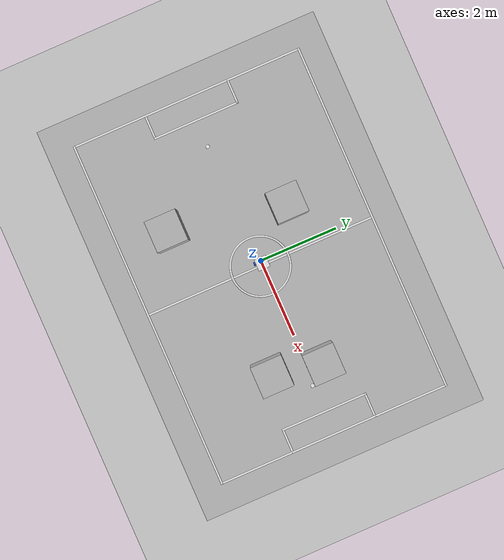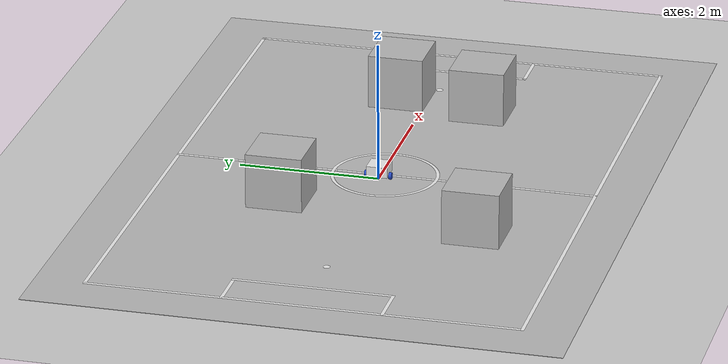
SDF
<sdf version="1.7">
 <world name="default">
  <light name="sun" type="directional">
   <pose>0 0 10 0 -0 0</pose>
   <diffuse>0.8 0.8 0.8 1</diffuse>
   <specular>0.2 0.2 0.2 1</specular>
   <attenuation>
    <range>1000</range>
    <constant>0.9</constant>
    <linear>0.01</linear>
    <quadratic>0.001</quadratic>
   </attenuation>
   <direction>-0.5 0.1 -0.9</direction>
   <spot><inner_angle>0</inner_angle><outer_angle>0</outer_angle><falloff>0</falloff></spot>
  </light>
  <model name="ground_plane">
   <static>1</static>
   <link name="link">
    <collision name="collision">
     <geometry><plane><normal>0 0 1</normal><size>100 100</size></plane></geometry>
     <surface>
      <contact><collide_bitmask>65535</collide_bitmask></contact>
      <friction><ode><mu>100</mu><mu2>50</mu2></ode></friction>
     </surface>
    </collision>
    <visual name="visual">
     <cast_shadows>0</cast_shadows>
     <geometry><plane><normal>0 0 1</normal><size>100 100</size></plane></geometry>
     <material>
      <script><uri>file://media/materials/scripts/gazebo.material</uri><name>Gazebo/Grey</name></script>
     </material>
    </visual>
   </link>
  </model>
  <gravity>0 0 -9.8</gravity>
  <magnetic_field>6e-06 2.3e-05 -4.2e-05</magnetic_field>
  <atmosphere type="adiabatic"/>
  <physics type="ode">
   <max_step_size>0.001</max_step_size>
   <real_time_factor>1</real_time_factor>
   <real_time_update_rate>1000</real_time_update_rate>
  </physics>
  <scene><ambient>0.4 0.4 0.4 1</ambient><background>0.7 0.7 0.7 1</background><shadows>1</shadows></scene>
  <audio><device>default</device></audio>
  <spherical_coordinates>
   <surface_model>EARTH_WGS84</surface_model>
   <latitude_deg>0</latitude_deg>
   <longitude_deg>0</longitude_deg>
   <elevation>0</elevation>
   <heading_deg>0</heading_deg>
  </spherical_coordinates>
  <model name="my_bot">
   <link name="base_link">
    <inertial>
     <pose>0.065 0 0.0625 0 -0 0</pose>
     <mass>0.6</mass>
     <inertia>
      <ixx>0.00525625</ixx>
      <ixy>0</ixy>
      <ixz>0.0005625</ixz>
      <iyy>0.00593125</iyy>
      <iyz>0</iyz>
      <izz>0.008275</izz>
     </inertia>
    </inertial>
    <collision name="base_link_fixed_joint_lump__chassis_collision">
     <pose>0.05 0 0.075 0 -0 0</pose>
     <geometry><box><size>0.3 0.3 0.15</size></box></geometry>
    </collision>
    <collision name="base_link_fixed_joint_lump__caster_wheel_collision_1">
     <pose>0.14 0 0 0 -0 0</pose>
     <geometry><sphere><radius>0.05</radius></sphere></geometry>
     <surface><friction><ode><mu>0.001</mu><mu2>0.001</mu2></ode></friction></surface>
    </collision>
    <visual name="base_link_fixed_joint_lump__chassis_visual">
     <pose>0.05 0 0.075 0 -0 0</pose>
     <geometry><box><size>0.3 0.3 0.15</size></box></geometry>
     <material>
      <script><name>Gazebo/White</name><uri>file://media/materials/scripts/gazebo.material</uri></script>
     </material>
    </visual>
    <visual name="base_link_fixed_joint_lump__caster_wheel_visual_1">
     <pose>0.14 0 0 0 -0 0</pose>
     <geometry><sphere><radius>0.05</radius></sphere></geometry>
     <material>
      <script><name>Gazebo/Black</name><uri>file://media/materials/scripts/gazebo.material</uri></script>
     </material>
    </visual>
   </link>
   <joint name="left_wheel_joint" type="revolute">
    <pose relative_to="base_link">0 0.175 0 -1.5708 0 0</pose>
    <parent>base_link</parent>
    <child>left_wheel</child>
    <axis>
     <xyz>0 0 1</xyz>
     <limit><lower>-1e+16</lower><upper>1e+16</upper></limit>
     <dynamics><spring_reference>0</spring_reference><spring_stiffness>0</spring_stiffness></dynamics>
    </axis>
   </joint>
   <link name="left_wheel">
    <pose relative_to="left_wheel_joint">0 0 0 0 -0 0</pose>
    <inertial>
     <mass>0.1</mass>
     <inertia>
      <ixx>7.58333e-05</ixx>
      <ixy>0</ixy>
      <ixz>0</ixz>
      <iyy>7.58333e-05</iyy>
      <iyz>0</iyz>
      <izz>0.000125</izz>
     </inertia>
    </inertial>
    <collision name="left_wheel_collision">
     <geometry><cylinder><length>0.04</length><radius>0.05</radius></cylinder></geometry>
    </collision>
    <visual name="left_wheel_visual">
     <geometry><cylinder><length>0.04</length><radius>0.05</radius></cylinder></geometry>
     <material>
      <script><name>Gazebo/Blue</name><uri>file://media/materials/scripts/gazebo.material</uri></script>
     </material>
    </visual>
   </link>
   <joint name="right_wheel_joint" type="revolute">
    <pose relative_to="base_link">0 -0.175 0 1.5708 -0 0</pose>
    <parent>base_link</parent>
    <child>right_wheel</child>
    <axis>
     <xyz>0 0 -1</xyz>
     <limit><lower>-1e+16</lower><upper>1e+16</upper></limit>
     <dynamics><spring_reference>0</spring_reference><spring_stiffness>0</spring_stiffness></dynamics>
    </axis>
   </joint>
   <link name="right_wheel">
    <pose relative_to="right_wheel_joint">0 0 0 0 -0 0</pose>
    <inertial>
     <mass>0.1</mass>
     <inertia>
      <ixx>7.58333e-05</ixx>
      <ixy>0</ixy>
      <ixz>0</ixz>
      <iyy>7.58333e-05</iyy>
      <iyz>0</iyz>
      <izz>0.000125</izz>
     </inertia>
    </inertial>
    <collision name="right_wheel_collision">
     <geometry><cylinder><length>0.04</length><radius>0.05</radius></cylinder></geometry>
    </collision>
    <visual name="right_wheel_visual">
     <geometry><cylinder><length>0.04</length><radius>0.05</radius></cylinder></geometry>
     <material>
      <script><name>Gazebo/Blue</name><uri>file://media/materials/scripts/gazebo.material</uri></script>
     </material>
    </visual>
   </link>
   <static>0</static>
   <plugin name="diff_drive" filename="libgazebo_ros_diff_drive.so">
    <left_joint>left_wheel_joint</left_joint>
    <right_joint>right_wheel_joint</right_joint>
    <wheel_separation>0.35</wheel_separation>
    <wheel_diameter>0.1</wheel_diameter>
    <max_wheel_torque>200</max_wheel_torque>
    <max_wheel_acceleration>10.0</max_wheel_acceleration>
    <odometry_frame>odom</odometry_frame>
    <robot_base_frame>base_link</robot_base_frame>
    <publish_odom>1</publish_odom>
    <publish_odom_tf>1</publish_odom_tf>
    <publish_wheel_tf>1</publish_wheel_tf>
   </plugin>
   <pose>0.008671 2.5e-05 0.06 0 1e-06 7.3e-05</pose>
  </model>
  <model name="RoboCup 14 SPL Field">
   <static>1</static>
   <link name="field">
    <pose>0 0 0.01 0 -0 0</pose>
    <collision name="collision">
     <geometry><plane><normal>0 0 1</normal><size>10.4 7.4</size></plane></geometry>
     <surface><friction><ode><mu>100</mu><mu2>50</mu2></ode></friction></surface>
    </collision>
    <visual name="carpet">
     <cast_shadows>0</cast_shadows>
     <geometry><plane><normal>0 0 1</normal><size>10.4 7.4</size></plane></geometry>
     <material>
      <script>
       <uri>model://robocup09_spl_field/materials/scripts/</uri>
       <uri>model://robocup09_spl_field/materials/textures/</uri>
       <name>RoboCup/Carpet</name>
      </script>
     </material>
    </visual>
    <visual name="sideline_1">
     <pose>0 3 0.011 0 -0 0</pose>
     <cast_shadows>0</cast_shadows>
     <geometry><plane><normal>0 0 1</normal><size>9.05 0.05</size></plane></geometry>
     <material>
      <script><uri>file://media/materials/scripts/gazebo.material</uri><name>Gazebo/White</name></script>
     </material>
    </visual>
    <visual name="sideline_2">
     <pose>0 -3 0.011 0 -0 0</pose>
     <cast_shadows>0</cast_shadows>
     <geometry><plane><normal>0 0 1</normal><size>9.05 0.05</size></plane></geometry>
     <material>
      <script><uri>file://media/materials/scripts/gazebo.material</uri><name>Gazebo/White</name></script>
     </material>
    </visual>
    <visual name="endline_1">
     <pose>-4.5 0 0.011 0 -0 0</pose>
     <cast_shadows>0</cast_shadows>
     <geometry><plane><normal>0 0 1</normal><size>0.05 6.05</size></plane></geometry>
     <material>
      <script><uri>file://media/materials/scripts/gazebo.material</uri><name>Gazebo/White</name></script>
     </material>
    </visual>
    <visual name="endline_2">
     <pose>4.5 0 0.011 0 -0 0</pose>
     <cast_shadows>0</cast_shadows>
     <geometry><plane><normal>0 0 1</normal><size>0.05 6.05</size></plane></geometry>
     <material>
      <script><uri>file://media/materials/scripts/gazebo.material</uri><name>Gazebo/White</name></script>
     </material>
    </visual>
    <visual name="halfway_line">
     <pose>0 0 0.011 0 -0 0</pose>
     <cast_shadows>0</cast_shadows>
     <geometry><plane><normal>0 0 1</normal><size>0.05 6.05</size></plane></geometry>
     <material>
      <script><uri>file://media/materials/scripts/gazebo.material</uri><name>Gazebo/White</name></script>
     </material>
    </visual>
    <visual name="area_1_line_a">
     <pose>-3.9 0 0.011 0 -0 0</pose>
     <cast_shadows>0</cast_shadows>
     <geometry><plane><normal>0 0 1</normal><size>0.05 2.25</size></plane></geometry>
     <material>
      <script><uri>file://media/materials/scripts/gazebo.material</uri><name>Gazebo/White</name></script>
     </material>
    </visual>
    <visual name="area_2_line_a">
     <pose>-4.2 1.1 0.011 0 -0 0</pose>
     <cast_shadows>0</cast_shadows>
     <geometry><plane><normal>0 0 1</normal><size>0.65 0.05</size></plane></geometry>
     <material>
      <script><uri>file://media/materials/scripts/gazebo.material</uri><name>Gazebo/White</name></script>
     </material>
    </visual>
    <visual name="area_3_line_a">
     <pose>-4.2 -1.1 0.011 0 -0 0</pose>
     <cast_shadows>0</cast_shadows>
     <geometry><plane><normal>0 0 1</normal><size>0.65 0.05</size></plane></geometry>
     <material>
      <script><uri>file://media/materials/scripts/gazebo.material</uri><name>Gazebo/White</name></script>
     </material>
    </visual>
    <visual name="area_1_line_b">
     <pose>3.9 0 0.011 0 -0 0</pose>
     <cast_shadows>0</cast_shadows>
     <geometry><plane><normal>0 0 1</normal><size>0.05 2.25</size></plane></geometry>
     <material>
      <script><uri>file://media/materials/scripts/gazebo.material</uri><name>Gazebo/White</name></script>
     </material>
    </visual>
    <visual name="area_2_line_b">
     <pose>4.2 1.1 0.011 0 -0 0</pose>
     <cast_shadows>0</cast_shadows>
     <geometry><plane><normal>0 0 1</normal><size>0.65 0.05</size></plane></geometry>
     <material>
      <script><uri>file://media/materials/scripts/gazebo.material</uri><name>Gazebo/White</name></script>
     </material>
    </visual>
    <visual name="area_3_line_b">
     <pose>4.2 -1.1 0.011 0 -0 0</pose>
     <cast_shadows>0</cast_shadows>
     <geometry><plane><normal>0 0 1</normal><size>0.65 0.05</size></plane></geometry>
     <material>
      <script><uri>file://media/materials/scripts/gazebo.material</uri><name>Gazebo/White</name></script>
     </material>
    </visual>
    <visual name="penalty_a">
     <pose>-3.2 0 0.01 0 -0 0</pose>
     <cast_shadows>0</cast_shadows>
     <geometry><cylinder><radius>0.05</radius><length>0.0005</length></cylinder></geometry>
     <material>
      <script><uri>file://media/materials/scripts/gazebo.material</uri><name>Gazebo/White</name></script>
     </material>
    </visual>
    <visual name="penalty_b">
     <pose>3.2 0 0.01 0 -0 0</pose>
     <cast_shadows>0</cast_shadows>
     <geometry><cylinder><radius>0.05</radius><length>0.0005</length></cylinder></geometry>
     <material>
      <script><uri>file://media/materials/scripts/gazebo.material</uri><name>Gazebo/White</name></script>
     </material>
    </visual>
    <visual name="center_point">
     <pose>0 0 0.01 0 -0 0</pose>
     <cast_shadows>0</cast_shadows>
     <geometry><cylinder><radius>0.05</radius><length>0.0005</length></cylinder></geometry>
     <material>
      <script><uri>file://media/materials/scripts/gazebo.material</uri><name>Gazebo/White</name></script>
     </material>
    </visual>
    <visual name="center_circle">
     <pose>0 0 0.005 0 -0 0</pose>
     <cast_shadows>0</cast_shadows>
     <geometry>
      <mesh><scale>1 1 0.75</scale><uri>model://robocup14_spl_field/meshes/circle.dae</uri></mesh>
     </geometry>
     <material>
      <script><uri>file://media/materials/scripts/gazebo.material</uri><name>Gazebo/White</name></script>
     </material>
    </visual>
   </link>
   <pose>0.108107 -0.07441 0 0 -0 0</pose>
  </model>
  <model name="number1">
   <pose>2.85695 0.377297 0.4 0 -0 0</pose>
   <static>1</static>
   <link name="link">
    <visual name="visual">
     <geometry><mesh><uri>model://number1/meshes/number.dae</uri></mesh></geometry>
     <material>
      <script>
       <uri>model://number1/materials/scripts</uri>
       <uri>model://number1/materials/textures</uri>
       <name>Number/One</name>
      </script>
     </material>
    </visual>
   </link>
  </model>
  <model name="number2">
   <pose>-1.55853 -1.78318 0.4 0 -0 0</pose>
   <static>1</static>
   <link name="link">
    <visual name="visual">
     <geometry><mesh><uri>model://number1/meshes/number.dae</uri></mesh></geometry>
     <material>
      <script>
       <uri>model://number2/materials/scripts</uri>
       <uri>model://number2/materials/textures</uri>
       <name>Number/Two</name>
      </script>
     </material>
    </visual>
   </link>
  </model>
  <model name="number3">
   <pose>-1.03124 1.12325 0.4 0 -0 0</pose>
   <static>1</static>
   <link name="link">
    <visual name="visual">
     <geometry><mesh><uri>model://number1/meshes/number.dae</uri></mesh></geometry>
     <material>
      <script>
       <uri>model://number3/materials/scripts</uri>
       <uri>model://number3/materials/textures</uri>
       <name>Number/Three</name>
      </script>
     </material>
    </visual>
   </link>
  </model>
  <model name="number1_clone">
   <pose>2.62952 -0.869381 0.4 0 -0 0</pose>
   <static>1</static>
   <link name="link">
    <visual name="visual">
     <geometry><mesh><uri>model://number1/meshes/number.dae</uri></mesh></geometry>
     <material>
      <script>
       <uri>model://number1/materials/scripts</uri>
       <uri>model://number1/materials/textures</uri>
       <name>Number/One</name>
      </script>
     </material>
    </visual>
   </link>
  </model>
 </world>
</sdf>
